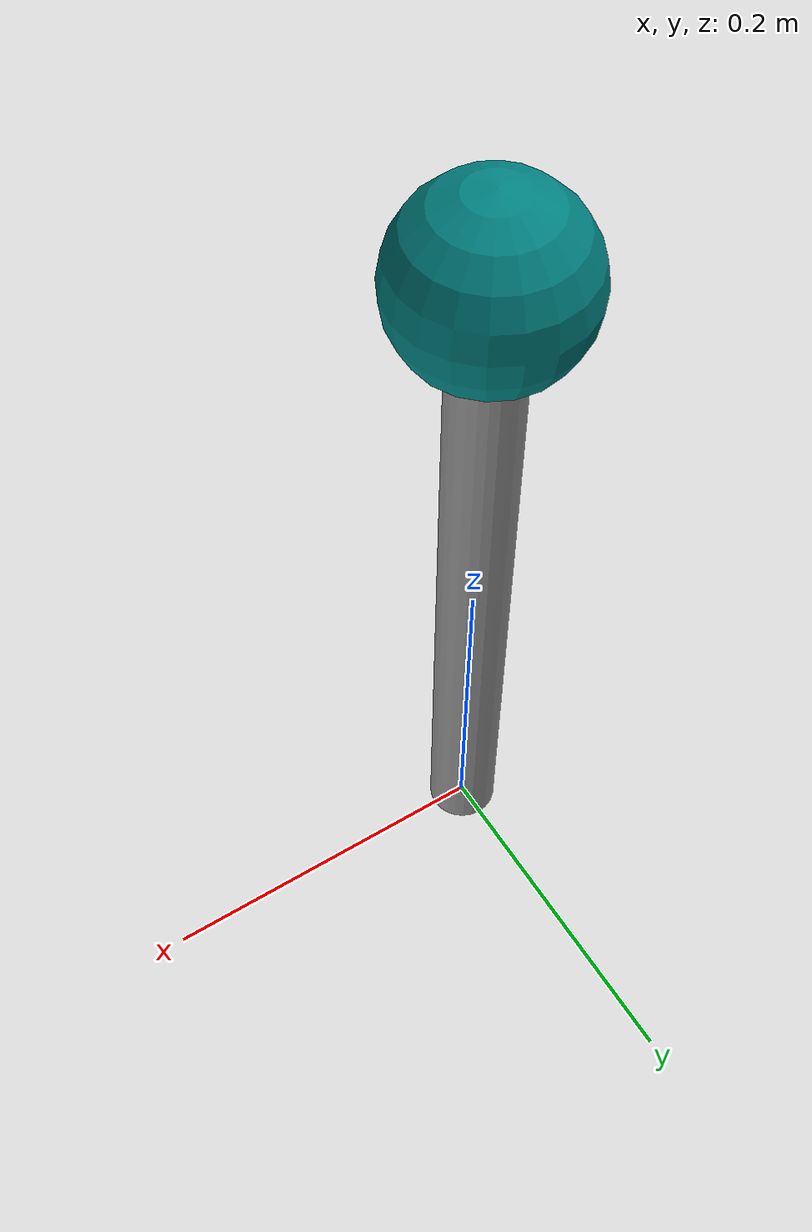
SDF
<?xml version="1.0"?>
<sdf version="1.4">
    <model name="landmark_001">
        <link name="shaft">
            <pose>0.0 0.0 0.2 0 0 0</pose>
            <inertial>
                <pose>0 0 0.0 0 0 0</pose>
               <inertia>
                    <ixx>1.0</ixx>
                    <ixy>0</ixy>
                    <ixz>0</ixz>
                    <iyy>1.0</iyy>
                    <iyz>0</iyz>
                    <izz>1.0</izz>
                </inertia>
                <mass>1.0</mass>
            </inertial>
            <collision name="collision">
                <geometry>
                    <cylinder>
                        <length>0.4</length>
                        <radius>0.02</radius>
                    </cylinder>
                </geometry>
            </collision>
            <visual name="visual">
		<cast_shadows>true</cast_shadows>
                <geometry>
                    <cylinder>
                        <length>0.4</length>
                        <radius>0.02</radius>
                    </cylinder>
                </geometry>
                <material>
		    <ambient>0.6 0.6 0.6 1</ambient>
  		    <diffuse>0.6 0.6 0.6 1</diffuse>
		    <specular>0.1 0.1 0.1 1</specular>
  		    <emissive>0.0 0.0 0.0 0</emissive>
                </material>
            </visual>
        </link>
        <link name="ball">
            <pose>0.0 0.0 0.425 0 0 0</pose>
            <inertial>
                <pose>0 0 0.0 0 0 0</pose>
               <inertia>
                    <ixx>1.0</ixx>
                    <ixy>0</ixy>
                    <ixz>0</ixz>
                    <iyy>1.0</iyy>
                    <iyz>0</iyz>
                    <izz>1.0</izz>
                </inertia>
                <mass>1.0</mass>
            </inertial>
            <collision name="collision">
                <geometry>
                    <sphere>
                        <radius>0.05</radius>
                    </sphere>
                </geometry>
            </collision>
            <visual name="visual">
		<cast_shadows>true</cast_shadows>
                <geometry>
                    <sphere>
                        <radius>0.05</radius>
                    </sphere>
                </geometry>
                <material>
		    <ambient>0.0 0.5 0.5 1</ambient>
  		    <diffuse>0.0 0.5 0.5 1</diffuse>
		    <specular>0.1 0.1 0.1 1</specular>
  		    <emissive>0.2 0.2 0.2 0</emissive>
                </material>
            </visual>
        </link>

        <static>false</static>

        <joint name="shaft_ball" type="revolute">
            <pose>0 0 .4 0 0 0</pose>
            <child>ball</child>
            <parent>shaft</parent>
            <axis>
                <limit>
                    <lower>0.0</lower>
                    <upper>0.0</upper>
                </limit>
                <xyz>0 0 .42</xyz>
            </axis>
        </joint>
    </model>
</sdf>
